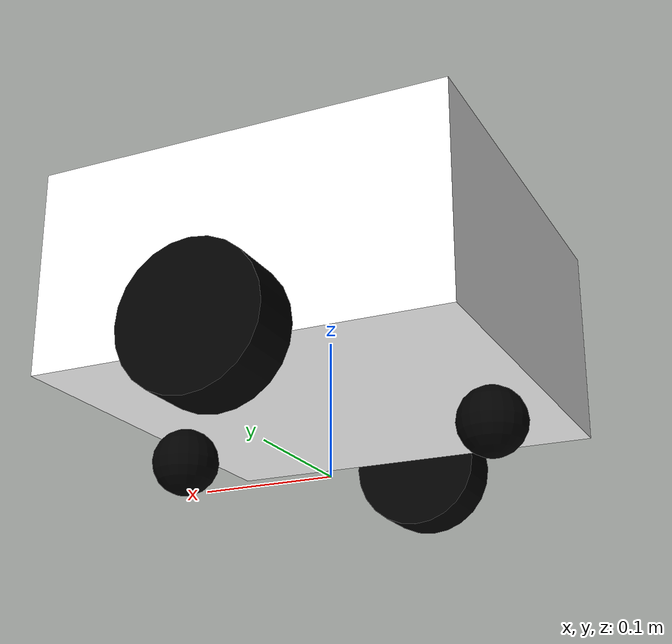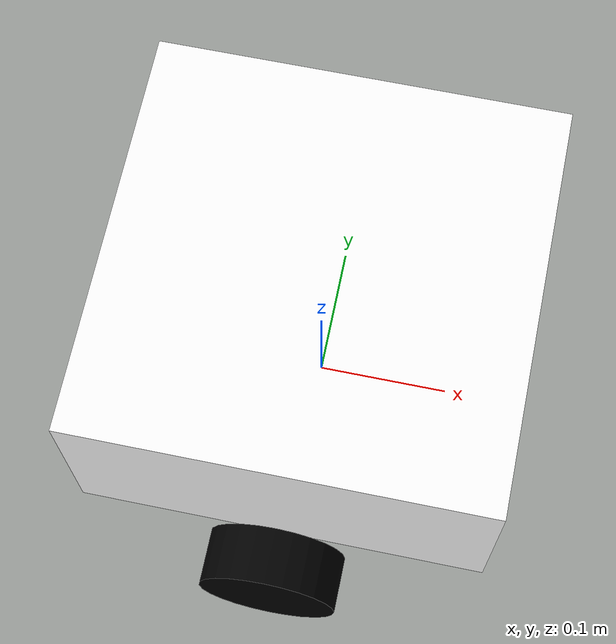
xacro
<?xml version="1.0"?>
<robot xmlns:xacro="http://www.ros.org/wiki/xacro">

  <!-- ===== Dimensions ===== -->
  <xacro:property name="wheel_radius"   value="0.05"/>
  <xacro:property name="wheel_width"    value="0.04"/>
  <xacro:property name="wheel_offset_y" value="0.18"/>
  <xacro:property name="caster_radius"  value="0.025"/>
  <xacro:property name="chassis_x"      value="0.30"/>
  <xacro:property name="chassis_y"      value="0.30"/>
  <xacro:property name="chassis_z"      value="0.15"/>

  <material name="white"><color rgba="1 1 1 1"/></material>
  <material name="black"><color rgba="0 0 0 1"/></material>

  <!-- ===== Frames ===== -->
  <link name="base_footprint"/>
  <link name="base_link"/>
  <joint name="base_joint" type="fixed">
    <parent link="base_footprint"/>
    <child link="base_link"/>
    <origin xyz="0 0 ${wheel_radius}"/>
  </joint>

  <!-- ===== Chassis ===== -->
  <joint name="chassis_joint" type="fixed">
    <parent link="base_link"/>
    <child link="chassis"/>
    <origin xyz="0 0 ${chassis_z/2}"/>
  </joint>
  <link name="chassis">
    <visual>
      <geometry><box size="${chassis_x} ${chassis_y} ${chassis_z}"/></geometry>
      <material name="white"/>
    </visual>
    <collision>
      <geometry><box size="${chassis_x} ${chassis_y} ${chassis_z}"/></geometry>
    </collision>
    <xacro:inertial_box mass="0.5" x="${chassis_x}" y="${chassis_y}" z="${chassis_z}">
      <origin xyz="0 0 0"/>
    </xacro:inertial_box>
  </link>

  <!-- ===== Drive wheels ===== -->
  <joint name="left_wheel_joint" type="continuous">
    <parent link="base_link"/>
    <child link="left_wheel"/>
    <origin xyz="0 ${wheel_offset_y} 0" rpy="-${pi/2} 0 0"/>
    <axis xyz="0 0 1"/>
  </joint>
  <link name="left_wheel">
    <visual>
      <geometry><cylinder radius="${wheel_radius}" length="${wheel_width}"/></geometry>
      <material name="black"/>
    </visual>
    <collision>
      <geometry><cylinder radius="${wheel_radius}" length="${wheel_width}"/></geometry>
    </collision>
    <xacro:inertial_cylinder mass="0.1" length="${wheel_width}" radius="${wheel_radius}">
      <origin xyz="0 0 0"/>
    </xacro:inertial_cylinder>
  </link>

  <joint name="right_wheel_joint" type="continuous">
    <parent link="base_link"/>
    <child link="right_wheel"/>
    <origin xyz="0 -${wheel_offset_y} 0" rpy="${pi/2} 0 0"/>
    <axis xyz="0 0 -1"/>
  </joint>
  <link name="right_wheel">
    <visual>
      <geometry><cylinder radius="${wheel_radius}" length="${wheel_width}"/></geometry>
      <material name="black"/>
    </visual>
    <collision>
      <geometry><cylinder radius="${wheel_radius}" length="${wheel_width}"/></geometry>
    </collision>
    <xacro:inertial_cylinder mass="0.1" length="${wheel_width}" radius="${wheel_radius}">
      <origin xyz="0 0 0"/>
    </xacro:inertial_cylinder>
  </link>

  <!-- ===== Casters (front + rear) ===== -->
  <joint name="caster_joint" type="fixed">
    <parent link="base_link"/>
    <child link="caster_wheel"/>
    <origin xyz="0.12 0 ${caster_radius - wheel_radius}"/>
  </joint>
  <link name="caster_wheel">
    <visual>
      <geometry><sphere radius="${caster_radius}"/></geometry>
      <material name="black"/>
    </visual>
    <collision>
      <geometry><sphere radius="${caster_radius}"/></geometry>
    </collision>
    <xacro:inertial_sphere mass="0.05" radius="${caster_radius}">
      <origin xyz="0 0 0"/>
    </xacro:inertial_sphere>
  </link>

  <joint name="caster_back_joint" type="fixed">
    <parent link="base_link"/>
    <child link="caster_back_wheel"/>
    <origin xyz="-0.12 0 ${caster_radius - wheel_radius}"/>
  </joint>
  <link name="caster_back_wheel">
    <visual>
      <geometry><sphere radius="${caster_radius}"/></geometry>
      <material name="black"/>
    </visual>
    <collision>
      <geometry><sphere radius="${caster_radius}"/></geometry>
    </collision>
    <xacro:inertial_sphere mass="0.05" radius="${caster_radius}">
      <origin xyz="0 0 0"/>
    </xacro:inertial_sphere>
  </link>

</robot>
